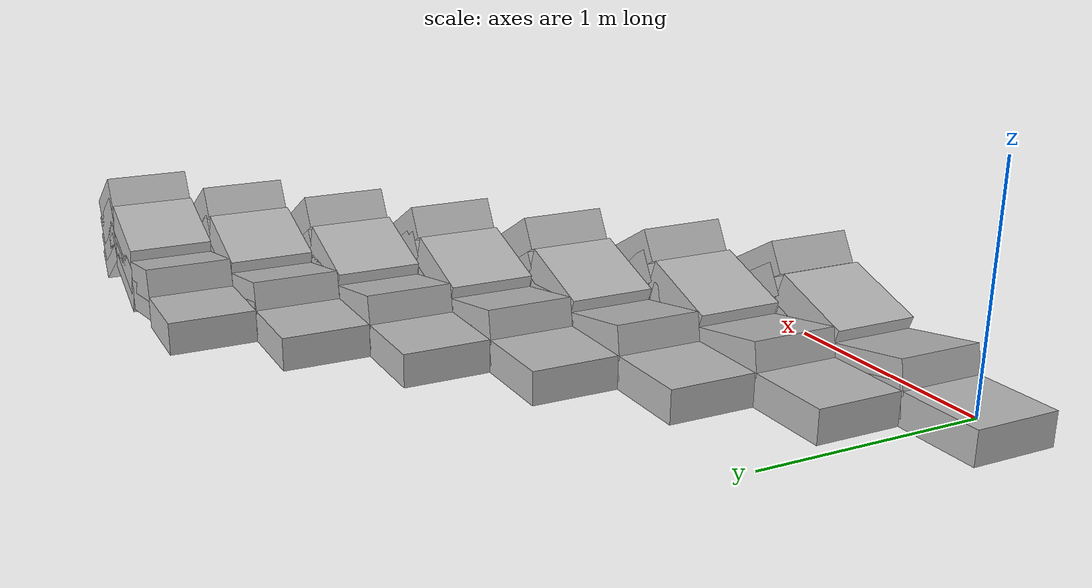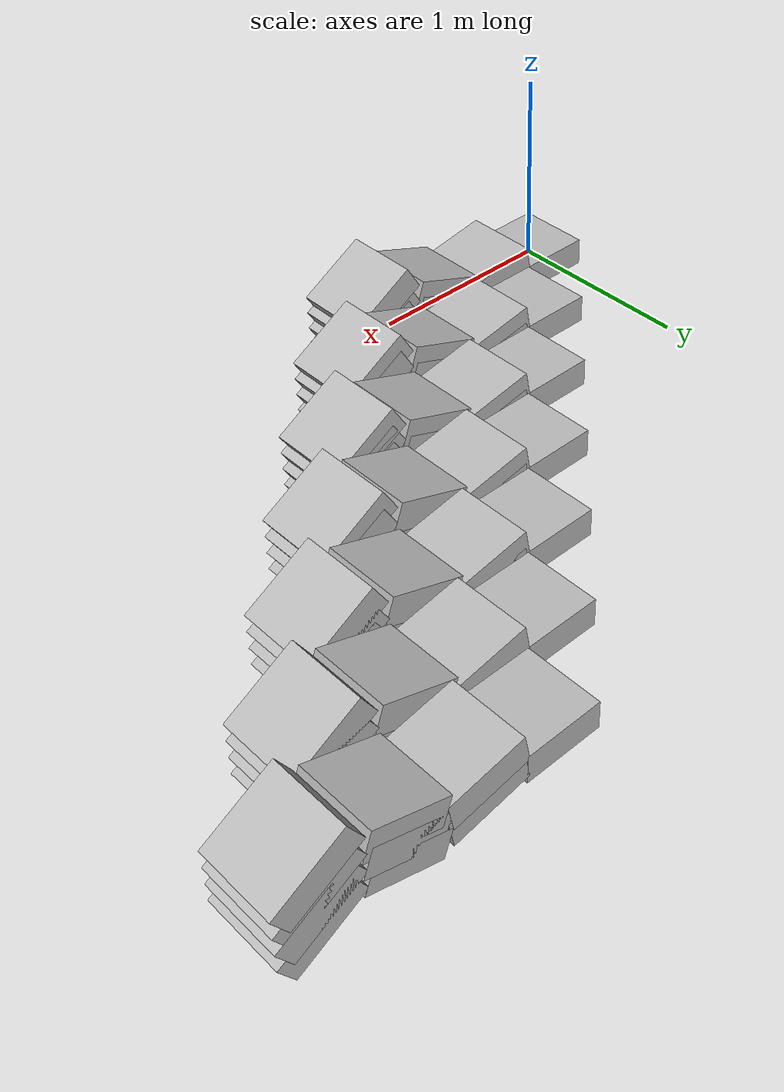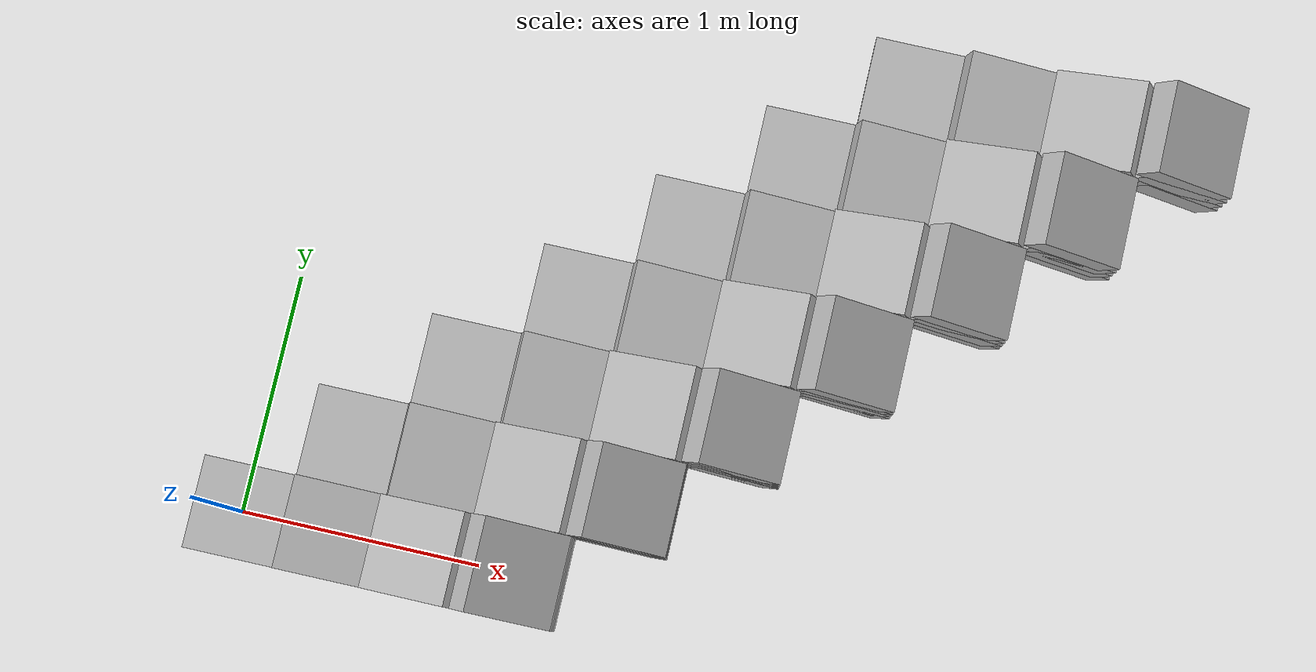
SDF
<?xml version="1.0" ?>
<sdf version="1.4">

  <model name="block_angle_steps">
    <static>true</static>
    <pose>0 0 0 0 0 0</pose>

          <include>
            <name>block_0_0_0</name>
            <pose> 0.0 0.0 0.0 -0.0 0 1.570796 </pose>
            <uri>model://cinder_block_wide</uri>
          </include>

          <include>
            <name>block_0_1_1</name>
            <pose> 0.386 0.0 0.092 0.17453292519943295 0 1.570796 </pose>
            <uri>model://cinder_block_wide</uri>
          </include>

          <include>
            <name>block_0_1_0</name>
            <pose> 0.386 0.0 0.0 0.17453292519943295 0 1.570796 </pose>
            <uri>model://cinder_block_wide</uri>
          </include>

          <include>
            <name>block_0_2_2</name>
            <pose> 0.772 0.0 0.184 -0.3490658503988659 0 1.570796 </pose>
            <uri>model://cinder_block_wide</uri>
          </include>

          <include>
            <name>block_0_2_1</name>
            <pose> 0.772 0.0 0.092 -0.3490658503988659 0 1.570796 </pose>
            <uri>model://cinder_block_wide</uri>
          </include>

          <include>
            <name>block_0_2_0</name>
            <pose> 0.772 0.0 0.0 -0.3490658503988659 0 1.570796 </pose>
            <uri>model://cinder_block_wide</uri>
          </include>

          <include>
            <name>block_0_3_3</name>
            <pose> 1.158 0.0 0.276 0.5235987755982988 0 1.570796 </pose>
            <uri>model://cinder_block_wide</uri>
          </include>

          <include>
            <name>block_0_3_2</name>
            <pose> 1.158 0.0 0.184 0.5235987755982988 0 1.570796 </pose>
            <uri>model://cinder_block_wide</uri>
          </include>

          <include>
            <name>block_0_3_1</name>
            <pose> 1.158 0.0 0.092 0.5235987755982988 0 1.570796 </pose>
            <uri>model://cinder_block_wide</uri>
          </include>

          <include>
            <name>block_0_3_0</name>
            <pose> 1.158 0.0 0.0 0.5235987755982988 0 1.570796 </pose>
            <uri>model://cinder_block_wide</uri>
          </include>

          <include>
            <name>block_1_0_0</name>
            <pose> 0.386 0.387 0.0 -0.0 0 1.570796 </pose>
            <uri>model://cinder_block_wide</uri>
          </include>

          <include>
            <name>block_1_1_1</name>
            <pose> 0.772 0.387 0.092 0.17453292519943295 0 1.570796 </pose>
            <uri>model://cinder_block_wide</uri>
          </include>

          <include>
            <name>block_1_1_0</name>
            <pose> 0.772 0.387 0.0 0.17453292519943295 0 1.570796 </pose>
            <uri>model://cinder_block_wide</uri>
          </include>

          <include>
            <name>block_1_2_2</name>
            <pose> 1.158 0.387 0.184 -0.3490658503988659 0 1.570796 </pose>
            <uri>model://cinder_block_wide</uri>
          </include>

          <include>
            <name>block_1_2_1</name>
            <pose> 1.158 0.387 0.092 -0.3490658503988659 0 1.570796 </pose>
            <uri>model://cinder_block_wide</uri>
          </include>

          <include>
            <name>block_1_2_0</name>
            <pose> 1.158 0.387 0.0 -0.3490658503988659 0 1.570796 </pose>
            <uri>model://cinder_block_wide</uri>
          </include>

          <include>
            <name>block_1_3_3</name>
            <pose> 1.544 0.387 0.276 0.5235987755982988 0 1.570796 </pose>
            <uri>model://cinder_block_wide</uri>
          </include>

          <include>
            <name>block_1_3_2</name>
            <pose> 1.544 0.387 0.184 0.5235987755982988 0 1.570796 </pose>
            <uri>model://cinder_block_wide</uri>
          </include>

          <include>
            <name>block_1_3_1</name>
            <pose> 1.544 0.387 0.092 0.5235987755982988 0 1.570796 </pose>
            <uri>model://cinder_block_wide</uri>
          </include>

          <include>
            <name>block_1_3_0</name>
            <pose> 1.544 0.387 0.0 0.5235987755982988 0 1.570796 </pose>
            <uri>model://cinder_block_wide</uri>
          </include>

          <include>
            <name>block_2_0_0</name>
            <pose> 0.772 0.774 0.0 -0.0 0 1.570796 </pose>
            <uri>model://cinder_block_wide</uri>
          </include>

          <include>
            <name>block_2_1_1</name>
            <pose> 1.158 0.774 0.092 0.17453292519943295 0 1.570796 </pose>
            <uri>model://cinder_block_wide</uri>
          </include>

          <include>
            <name>block_2_1_0</name>
            <pose> 1.158 0.774 0.0 0.17453292519943295 0 1.570796 </pose>
            <uri>model://cinder_block_wide</uri>
          </include>

          <include>
            <name>block_2_2_2</name>
            <pose> 1.544 0.774 0.184 -0.3490658503988659 0 1.570796 </pose>
            <uri>model://cinder_block_wide</uri>
          </include>

          <include>
            <name>block_2_2_1</name>
            <pose> 1.544 0.774 0.092 -0.3490658503988659 0 1.570796 </pose>
            <uri>model://cinder_block_wide</uri>
          </include>

          <include>
            <name>block_2_2_0</name>
            <pose> 1.544 0.774 0.0 -0.3490658503988659 0 1.570796 </pose>
            <uri>model://cinder_block_wide</uri>
          </include>

          <include>
            <name>block_2_3_3</name>
            <pose> 1.93 0.774 0.276 0.5235987755982988 0 1.570796 </pose>
            <uri>model://cinder_block_wide</uri>
          </include>

          <include>
            <name>block_2_3_2</name>
            <pose> 1.93 0.774 0.184 0.5235987755982988 0 1.570796 </pose>
            <uri>model://cinder_block_wide</uri>
          </include>

          <include>
            <name>block_2_3_1</name>
            <pose> 1.93 0.774 0.092 0.5235987755982988 0 1.570796 </pose>
            <uri>model://cinder_block_wide</uri>
          </include>

          <include>
            <name>block_2_3_0</name>
            <pose> 1.93 0.774 0.0 0.5235987755982988 0 1.570796 </pose>
            <uri>model://cinder_block_wide</uri>
          </include>

          <include>
            <name>block_3_0_0</name>
            <pose> 1.158 1.161 0.0 -0.0 0 1.570796 </pose>
            <uri>model://cinder_block_wide</uri>
          </include>

          <include>
            <name>block_3_1_1</name>
            <pose> 1.544 1.161 0.092 0.17453292519943295 0 1.570796 </pose>
            <uri>model://cinder_block_wide</uri>
          </include>

          <include>
            <name>block_3_1_0</name>
            <pose> 1.544 1.161 0.0 0.17453292519943295 0 1.570796 </pose>
            <uri>model://cinder_block_wide</uri>
          </include>

          <include>
            <name>block_3_2_2</name>
            <pose> 1.93 1.161 0.184 -0.3490658503988659 0 1.570796 </pose>
            <uri>model://cinder_block_wide</uri>
          </include>

          <include>
            <name>block_3_2_1</name>
            <pose> 1.93 1.161 0.092 -0.3490658503988659 0 1.570796 </pose>
            <uri>model://cinder_block_wide</uri>
          </include>

          <include>
            <name>block_3_2_0</name>
            <pose> 1.93 1.161 0.0 -0.3490658503988659 0 1.570796 </pose>
            <uri>model://cinder_block_wide</uri>
          </include>

          <include>
            <name>block_3_3_3</name>
            <pose> 2.316 1.161 0.276 0.5235987755982988 0 1.570796 </pose>
            <uri>model://cinder_block_wide</uri>
          </include>

          <include>
            <name>block_3_3_2</name>
            <pose> 2.316 1.161 0.184 0.5235987755982988 0 1.570796 </pose>
            <uri>model://cinder_block_wide</uri>
          </include>

          <include>
            <name>block_3_3_1</name>
            <pose> 2.316 1.161 0.092 0.5235987755982988 0 1.570796 </pose>
            <uri>model://cinder_block_wide</uri>
          </include>

          <include>
            <name>block_3_3_0</name>
            <pose> 2.316 1.161 0.0 0.5235987755982988 0 1.570796 </pose>
            <uri>model://cinder_block_wide</uri>
          </include>

          <include>
            <name>block_4_0_0</name>
            <pose> 1.544 1.548 0.0 -0.0 0 1.570796 </pose>
            <uri>model://cinder_block_wide</uri>
          </include>

          <include>
            <name>block_4_1_1</name>
            <pose> 1.9300000000000002 1.548 0.092 0.17453292519943295 0 1.570796 </pose>
            <uri>model://cinder_block_wide</uri>
          </include>

          <include>
            <name>block_4_1_0</name>
            <pose> 1.9300000000000002 1.548 0.0 0.17453292519943295 0 1.570796 </pose>
            <uri>model://cinder_block_wide</uri>
          </include>

          <include>
            <name>block_4_2_2</name>
            <pose> 2.316 1.548 0.184 -0.3490658503988659 0 1.570796 </pose>
            <uri>model://cinder_block_wide</uri>
          </include>

          <include>
            <name>block_4_2_1</name>
            <pose> 2.316 1.548 0.092 -0.3490658503988659 0 1.570796 </pose>
            <uri>model://cinder_block_wide</uri>
          </include>

          <include>
            <name>block_4_2_0</name>
            <pose> 2.316 1.548 0.0 -0.3490658503988659 0 1.570796 </pose>
            <uri>model://cinder_block_wide</uri>
          </include>

          <include>
            <name>block_4_3_3</name>
            <pose> 2.702 1.548 0.276 0.5235987755982988 0 1.570796 </pose>
            <uri>model://cinder_block_wide</uri>
          </include>

          <include>
            <name>block_4_3_2</name>
            <pose> 2.702 1.548 0.184 0.5235987755982988 0 1.570796 </pose>
            <uri>model://cinder_block_wide</uri>
          </include>

          <include>
            <name>block_4_3_1</name>
            <pose> 2.702 1.548 0.092 0.5235987755982988 0 1.570796 </pose>
            <uri>model://cinder_block_wide</uri>
          </include>

          <include>
            <name>block_4_3_0</name>
            <pose> 2.702 1.548 0.0 0.5235987755982988 0 1.570796 </pose>
            <uri>model://cinder_block_wide</uri>
          </include>

          <include>
            <name>block_5_0_0</name>
            <pose> 1.9300000000000002 1.935 0.0 -0.0 0 1.570796 </pose>
            <uri>model://cinder_block_wide</uri>
          </include>

          <include>
            <name>block_5_1_1</name>
            <pose> 2.3160000000000003 1.935 0.092 0.17453292519943295 0 1.570796 </pose>
            <uri>model://cinder_block_wide</uri>
          </include>

          <include>
            <name>block_5_1_0</name>
            <pose> 2.3160000000000003 1.935 0.0 0.17453292519943295 0 1.570796 </pose>
            <uri>model://cinder_block_wide</uri>
          </include>

          <include>
            <name>block_5_2_2</name>
            <pose> 2.702 1.935 0.184 -0.3490658503988659 0 1.570796 </pose>
            <uri>model://cinder_block_wide</uri>
          </include>

          <include>
            <name>block_5_2_1</name>
            <pose> 2.702 1.935 0.092 -0.3490658503988659 0 1.570796 </pose>
            <uri>model://cinder_block_wide</uri>
          </include>

          <include>
            <name>block_5_2_0</name>
            <pose> 2.702 1.935 0.0 -0.3490658503988659 0 1.570796 </pose>
            <uri>model://cinder_block_wide</uri>
          </include>

          <include>
            <name>block_5_3_3</name>
            <pose> 3.088 1.935 0.276 0.5235987755982988 0 1.570796 </pose>
            <uri>model://cinder_block_wide</uri>
          </include>

          <include>
            <name>block_5_3_2</name>
            <pose> 3.088 1.935 0.184 0.5235987755982988 0 1.570796 </pose>
            <uri>model://cinder_block_wide</uri>
          </include>

          <include>
            <name>block_5_3_1</name>
            <pose> 3.088 1.935 0.092 0.5235987755982988 0 1.570796 </pose>
            <uri>model://cinder_block_wide</uri>
          </include>

          <include>
            <name>block_5_3_0</name>
            <pose> 3.088 1.935 0.0 0.5235987755982988 0 1.570796 </pose>
            <uri>model://cinder_block_wide</uri>
          </include>

          <include>
            <name>block_6_0_0</name>
            <pose> 2.316 2.322 0.0 -0.0 0 1.570796 </pose>
            <uri>model://cinder_block_wide</uri>
          </include>

          <include>
            <name>block_6_1_1</name>
            <pose> 2.702 2.322 0.092 0.17453292519943295 0 1.570796 </pose>
            <uri>model://cinder_block_wide</uri>
          </include>

          <include>
            <name>block_6_1_0</name>
            <pose> 2.702 2.322 0.0 0.17453292519943295 0 1.570796 </pose>
            <uri>model://cinder_block_wide</uri>
          </include>

          <include>
            <name>block_6_2_2</name>
            <pose> 3.088 2.322 0.184 -0.3490658503988659 0 1.570796 </pose>
            <uri>model://cinder_block_wide</uri>
          </include>

          <include>
            <name>block_6_2_1</name>
            <pose> 3.088 2.322 0.092 -0.3490658503988659 0 1.570796 </pose>
            <uri>model://cinder_block_wide</uri>
          </include>

          <include>
            <name>block_6_2_0</name>
            <pose> 3.088 2.322 0.0 -0.3490658503988659 0 1.570796 </pose>
            <uri>model://cinder_block_wide</uri>
          </include>

          <include>
            <name>block_6_3_3</name>
            <pose> 3.4739999999999998 2.322 0.276 0.5235987755982988 0 1.570796 </pose>
            <uri>model://cinder_block_wide</uri>
          </include>

          <include>
            <name>block_6_3_2</name>
            <pose> 3.4739999999999998 2.322 0.184 0.5235987755982988 0 1.570796 </pose>
            <uri>model://cinder_block_wide</uri>
          </include>

          <include>
            <name>block_6_3_1</name>
            <pose> 3.4739999999999998 2.322 0.092 0.5235987755982988 0 1.570796 </pose>
            <uri>model://cinder_block_wide</uri>
          </include>

          <include>
            <name>block_6_3_0</name>
            <pose> 3.4739999999999998 2.322 0.0 0.5235987755982988 0 1.570796 </pose>
            <uri>model://cinder_block_wide</uri>
          </include>

  </model>

</sdf>

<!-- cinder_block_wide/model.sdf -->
<sdf version="1.5">
  <model name="cinder_block_wide">
    <link name="link">
      <inertial>
        <pose>0 0  0.146 0 0 0</pose>
        <mass>5</mass>
        <!-- approximate as uniform box 0.387 x 0.387 x 0.092 m -->
        <inertia>
          <ixx>0.06814656666666667</ixx>
          <ixy>0.0000</ixy>
          <iyy>0.06814656666666667</iyy>
          <ixz>0.0000</ixz>
          <iyz>0.0000</iyz>
          <izz>0.1248075</izz>
        </inertia>
      </inertial>
      <visual name="visual">
        <geometry>

          <box>
            <size>0.387353556 0.387353556 0.146</size>
          </box>
        </geometry>
      </visual>

      <collision name="block_collision">
       <pose>0 0 0 0 0 0</pose>
        <geometry>
          <box>
            <size>0.387353556 0.387353556 0.146</size>
          </box>
        </geometry>
        <surface>
          <contact>
            <ode>
              <max_vel>0.1</max_vel>
              <min_depth>0.001</min_depth>
            </ode>
          </contact>
          <friction>
            <ode>
              <mu>1.0</mu>
              <mu2>1.0</mu2>
            </ode>
          </friction>
        </surface>

      </collision>

    </link>
  </model>
</sdf>
